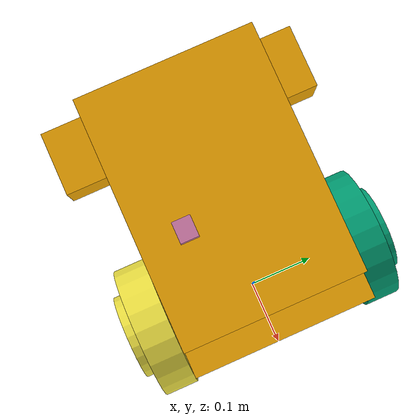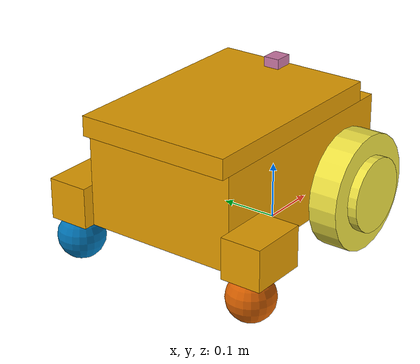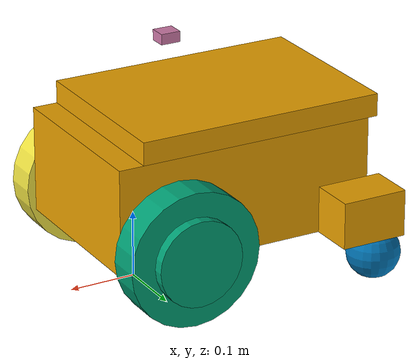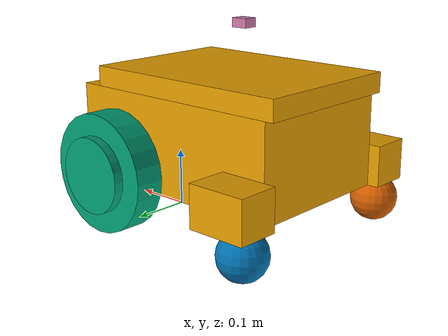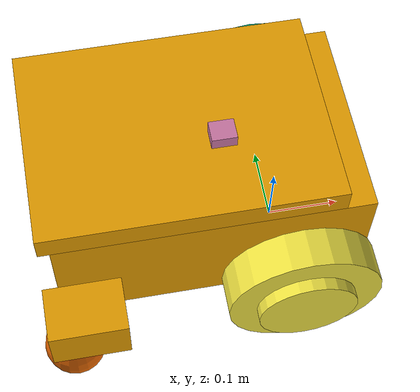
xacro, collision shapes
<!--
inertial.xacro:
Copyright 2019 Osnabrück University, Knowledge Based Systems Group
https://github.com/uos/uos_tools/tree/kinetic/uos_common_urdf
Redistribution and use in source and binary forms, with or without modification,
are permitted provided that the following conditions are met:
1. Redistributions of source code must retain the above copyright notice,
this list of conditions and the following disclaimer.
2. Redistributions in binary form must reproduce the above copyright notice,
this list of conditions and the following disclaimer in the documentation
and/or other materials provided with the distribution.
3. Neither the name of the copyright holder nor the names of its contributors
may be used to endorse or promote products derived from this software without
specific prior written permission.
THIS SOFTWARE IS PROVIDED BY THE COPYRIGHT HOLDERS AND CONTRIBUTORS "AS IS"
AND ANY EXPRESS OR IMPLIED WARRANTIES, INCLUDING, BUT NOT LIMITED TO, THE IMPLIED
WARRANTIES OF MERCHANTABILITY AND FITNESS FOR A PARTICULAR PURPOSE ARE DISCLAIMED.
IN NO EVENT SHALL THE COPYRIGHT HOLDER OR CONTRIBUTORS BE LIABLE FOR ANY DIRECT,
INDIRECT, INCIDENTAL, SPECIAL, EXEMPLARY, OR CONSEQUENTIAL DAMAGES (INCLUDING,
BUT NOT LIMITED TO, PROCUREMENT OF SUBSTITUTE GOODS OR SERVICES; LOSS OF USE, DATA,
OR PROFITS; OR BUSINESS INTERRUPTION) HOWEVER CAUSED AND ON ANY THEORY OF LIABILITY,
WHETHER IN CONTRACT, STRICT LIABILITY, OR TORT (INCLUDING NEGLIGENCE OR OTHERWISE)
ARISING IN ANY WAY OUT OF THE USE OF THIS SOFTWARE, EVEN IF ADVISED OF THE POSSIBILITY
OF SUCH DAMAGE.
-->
<?xml version="1.0"?>
<robot xmlns:xacro="http://wiki.ros.org/xacro" name="gen_6_mini">

  <!-- Arguments -->
  <xacro:arg name="use_sim" default="false"/>

  <!-- Properties -->
  <xacro:property name="wheel_r" value="0.1" />
  <xacro:property name="wheel_xpos" value="0.11" />

  <!-- Includes -->
  <xacro:include filename="$(find magni_description)/urdf/magni.gazebo.xacro" />
  <xacro:include filename="$(find magni_description)/urdf/inertial.xacro" />
  <xacro:include filename="$(find magni_description)/urdf/sensors/ur_c1_lidar.xacro" />

  <!-- Robot base_link -->
  <link name="base_link">
    <visual>
      <origin xyz="${-wheel_xpos} 0 ${-wheel_r+0.071}" rpy="0 0 0" />
      <geometry>
        <mesh filename="package://magni_description/meshes/gen6/chassis_mini.dae" />
      </geometry>
    </visual>
	<visual>
      <origin xyz="${-wheel_xpos-0.169} 0.17 ${-wheel_r+0.09}" rpy="0 0 ${pi}" />
      <geometry>
        <mesh filename="package://magni_description/meshes/common/caster_wheel.dae" />
      </geometry>
    </visual>
	<visual>
      <origin xyz="${-wheel_xpos-0.169} -0.17 ${-wheel_r+0.09}" rpy="0 0 ${pi}" />
      <geometry>
        <mesh filename="package://magni_description/meshes/common/caster_wheel.dae" />
      </geometry>
    </visual>
    <collision>
	  <origin xyz="${-wheel_xpos} 0 ${-wheel_r+0.151}" rpy="0 0 0" />
      <geometry>
        <box size="0.398 0.268 0.160"/>
      </geometry>
    </collision>
    <collision>
      <origin xyz="${-wheel_xpos-0.026} 0 ${-wheel_r+0.248}" rpy="0 0 0" />
      <geometry>
        <box size="0.375 0.268 0.034"/>
      </geometry>
    </collision>
    <collision>
      <origin xyz="${-wheel_xpos-0.169} 0.169 ${-wheel_r+0.106}" rpy="0 0 0" />
      <geometry>
        <box size="0.1 0.07 0.07"/>
      </geometry>
    </collision>
    <collision>
      <origin xyz="${-wheel_xpos-0.169} -0.169 ${-wheel_r+0.106}" rpy="0 0 0" />
      <geometry>
        <box size="0.1 0.07 0.07"/>
      </geometry>
    </collision>
    <xacro:box_inertial_with_origin  x="0.398" y="0.221" z="0.150" mass="10.0">
      <origin xyz="-0.15 0 0.03" rpy="0 0 0" />
    </xacro:box_inertial_with_origin>
  </link>

  <!-- Fixed offset from the floor to the center of the wheels -->
  <link name="base_footprint"/>
  <joint name="base_footprint_joint" type="fixed">
    <parent link="base_footprint"/>
    <child link="base_link"/>
    <origin xyz="0 0 ${wheel_r}" rpy="0 0 0"/>
  </joint>

  <!-- Macro for defining wheels -->
  <xacro:macro name="wheel" params="prefix reflect">
    <link name="${prefix}_wheel">
      <visual>
        <origin xyz="${-0.071*reflect} 0 0" rpy="0 ${(reflect-1)*pi/2} 0" />
        <geometry>
          <mesh filename="package://magni_description/meshes/common/standard_wheel.dae" />
        </geometry>
      </visual>
      <collision>
        <origin xyz="0 0 0" rpy="0 ${pi/2} 0" />
        <geometry>
          <cylinder radius="${wheel_r}" length="0.05"/>
        </geometry>
      </collision>
      <collision>
        <origin xyz="${0.033*reflect} 0 0" rpy="0 ${pi/2} 0" />
        <geometry>
          <cylinder radius="0.064" length="0.016"/>
        </geometry>
      </collision>
      <xacro:cylinder_inertial_with_origin radius="${wheel_r}" length="0.05" mass="3.34">
        <origin xyz="0 0 0" rpy="0 ${pi/2} 0" />
      </xacro:cylinder_inertial_with_origin>
    </link>
    <joint name="${prefix}_wheel_joint" type="continuous">
      <axis xyz="1 0 0" rpy="0 0 0" />
      <parent link="base_link"/>
      <child link="${prefix}_wheel"/>
      <origin xyz="0 ${0.163*reflect} 0" rpy="0 0 ${pi/2}"/>
    </joint>
  </xacro:macro>

  <xacro:wheel prefix="left" reflect="1"/>
  <xacro:wheel prefix="right" reflect="-1"/>

  <!-- Macro for defining caster wheels -->
  <xacro:macro name="caster_wheel" params="prefix reflect">
    <link name="${prefix}_caster_wheel">
      <collision>
        <origin xyz="${-wheel_xpos-0.19} ${reflect*0.169} ${-wheel_r+0.04}" rpy="0 0 0" />
        <geometry>
          <sphere radius="0.04"/>
        </geometry>
      </collision>
    </link>
    <joint name="${prefix}_caster_wheel_joint" type="fixed">
      <parent link="base_link"/>
      <child link="${prefix}_caster_wheel"/>
    </joint>
  </xacro:macro>

  <xacro:caster_wheel prefix="left" reflect="1"/>
  <xacro:caster_wheel prefix="right" reflect="-1"/>

 <!-- ROS 2 Control block -->
  <ros2_control name="MagniSystem" type="system">
    <hardware>
      <xacro:if value="$(arg use_sim)">
        <plugin>gz_ros2_control/GazeboSimSystem</plugin>
      </xacro:if>
      <xacro:unless value="$(arg use_sim)">
        <plugin>ubiquity_motor_ros2/MotorHardware</plugin>
      </xacro:unless>
    </hardware>

    <joint name="left_wheel_joint">
      <command_interface name="velocity"/>
      <state_interface name="position"/>
      <state_interface name="velocity"/>
      <state_interface name="effort"/>
    </joint>

    <joint name="right_wheel_joint">
      <command_interface name="velocity"/>
      <state_interface name="position"/>
      <state_interface name="velocity"/>
      <state_interface name="effort"/>
    </joint>
  </ros2_control>

  <!-- Lidar Configuration for Mini (Top Plate) -->
  <xacro:ur_c1_lidar name="laser" connected_to="base_link">
    <origin xyz="-0.092 -0.066 0.23" rpy="0 0 0"/>
  </xacro:ur_c1_lidar>

</robot>

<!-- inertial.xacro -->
<robot xmlns:xacro="http://wiki.ros.org/xacro">
    <xacro:property name="M_PI" value="3.1415926535897931" />

    <!-- see https://secure.wikimedia.org/wikipedia/en/wiki/List_of_moment_of_inertia_tensors -->

    <!-- #################### versions without origin #################### -->
    <xacro:macro name="sphere_inertial" params="radius mass">
        <inertial>
            <mass value="${mass}" />
            <origin xyz="0 0 0" />
            <inertia ixx="${0.4 * mass * radius * radius}" ixy="0.0" ixz="0.0"
                     iyy="${0.4 * mass * radius * radius}" iyz="0.0"
                     izz="${0.4 * mass * radius * radius}" />
        </inertial>
    </xacro:macro>

    <xacro:macro name="cylinder_inertial" params="radius length mass">
        <inertial>
            <mass value="${mass}" />
            <origin xyz="0 0 0" />
            <inertia ixx="${0.0833333 * mass * (3 * radius * radius + length * length)}" ixy="0.0" ixz="0.0"
                     iyy="${0.0833333 * mass * (3 * radius * radius + length * length)}" iyz="0.0"
                     izz="${0.5 * mass * radius * radius}" />
        </inertial>
    </xacro:macro>

    <xacro:macro name="box_inertial" params="x y z mass">
        <inertial>
            <mass value="${mass}" />
            <origin xyz="-0.15 0 0.03" />
            <inertia ixx="${0.0833333 * mass * (y*y + z*z)}" ixy="0.0" ixz="0.0"
                     iyy="${0.0833333 * mass * (x*x + z*z)}" iyz="0.0"
                     izz="${0.0833333 * mass * (x*x + y*y)}" />
        </inertial>
    </xacro:macro>

    <!-- #################### versions with origin #################### -->
    <xacro:macro name="sphere_inertial_with_origin" params="radius mass *origin">
        <inertial>
            <mass value="${mass}" />
            <xacro:insert_block name="origin" />
            <inertia ixx="${0.4 * mass * radius * radius}" ixy="0.0" ixz="0.0"
                     iyy="${0.4 * mass * radius * radius}" iyz="0.0"
                     izz="${0.4 * mass * radius * radius}" />
        </inertial>
    </xacro:macro>

    <xacro:macro name="cylinder_inertial_with_origin" params="radius length mass *origin">
        <inertial>
            <mass value="${mass}" />
            <xacro:insert_block name="origin" />
            <inertia ixx="${0.0833333 * mass * (3 * radius * radius + length * length)}" ixy="0.0" ixz="0.0"
                     iyy="${0.0833333 * mass * (3 * radius * radius + length * length)}" iyz="0.0"
                     izz="${0.5 * mass * radius * radius}" />
        </inertial>
    </xacro:macro>

    <xacro:macro name="box_inertial_with_origin" params="x y z mass *origin">
        <inertial>
            <mass value="${mass}" />
            <xacro:insert_block name="origin" />
            <inertia ixx="${0.0833333 * mass * (y*y + z*z)}" ixy="0.0" ixz="0.0"
                     iyy="${0.0833333 * mass * (x*x + z*z)}" iyz="0.0"
                     izz="${0.0833333 * mass * (x*x + y*y)}" />
        </inertial>
    </xacro:macro>

</robot>

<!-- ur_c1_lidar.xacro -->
<robot xmlns:xacro="http://wiki.ros.org/xacro">

  <xacro:macro name="ur_c1_lidar" params="name:='' connected_to:='' visualize_mesh:=true *origin">

  <xacro:unless value="${connected_to == ''}">
    <joint name="${name}_joint" type="fixed">
      <parent link="${connected_to}"/>
      <child link="${name}"/>
      <xacro:insert_block name="origin"/>
    </joint>
  </xacro:unless>

  <link name="${name}">
    <xacro:if value="${visualize_mesh}">
      <visual>
        <origin xyz="0 0 -0.03" rpy="0 0 0" />
        <geometry>
          <mesh filename="package://magni_description/meshes/sensors/ur_c1_lidar.dae" />
        </geometry>
      </visual>
    </xacro:if>
    <collision>
      <origin xyz="0 0 0" rpy="0 0 0" />
      <geometry>
        <box size="0.03 0.026 0.016"/>
      </geometry>
    </collision>
  </link>

  <gazebo reference="${name}">
    <sensor type="gpu_lidar" name="${name}_sensor">
      <topic>scan</topic>
      <gz_frame_id>${name}</gz_frame_id>
      <pose>0 0 0 0 0 0</pose>
      <visualize>false</visualize>
      <update_rate>20</update_rate>
      <ray>
        <scan>
          <horizontal>
            <samples>811</samples>
            <min_angle>-3.14</min_angle>
            <max_angle>3.14</max_angle>
          </horizontal>
        </scan>
        <range>
          <min>0.05</min>
          <max>50.0</max>
          <resolution>0.01</resolution>
        </range>
        <noise>
          <type>gaussian</type>
          <mean>0.0</mean>
          <stddev>0.01</stddev>
        </noise>
      </ray>
    </sensor>
  </gazebo>

  </xacro:macro>

</robot>
